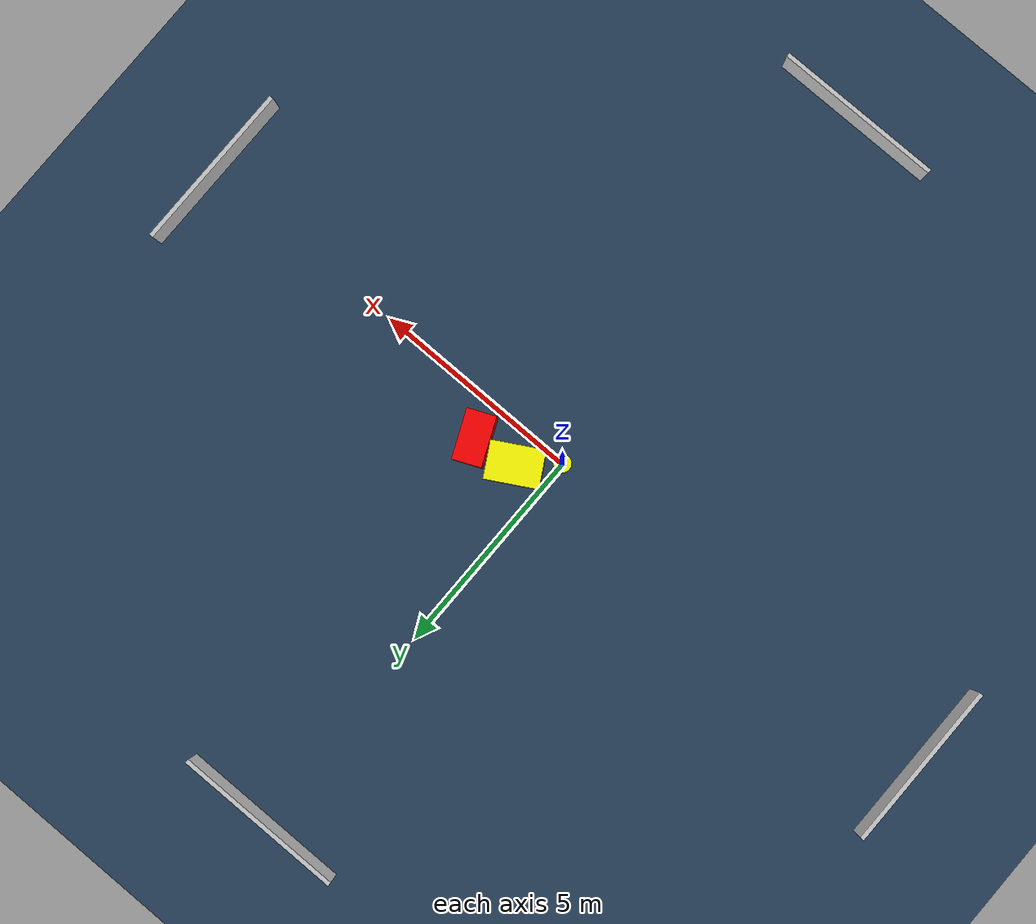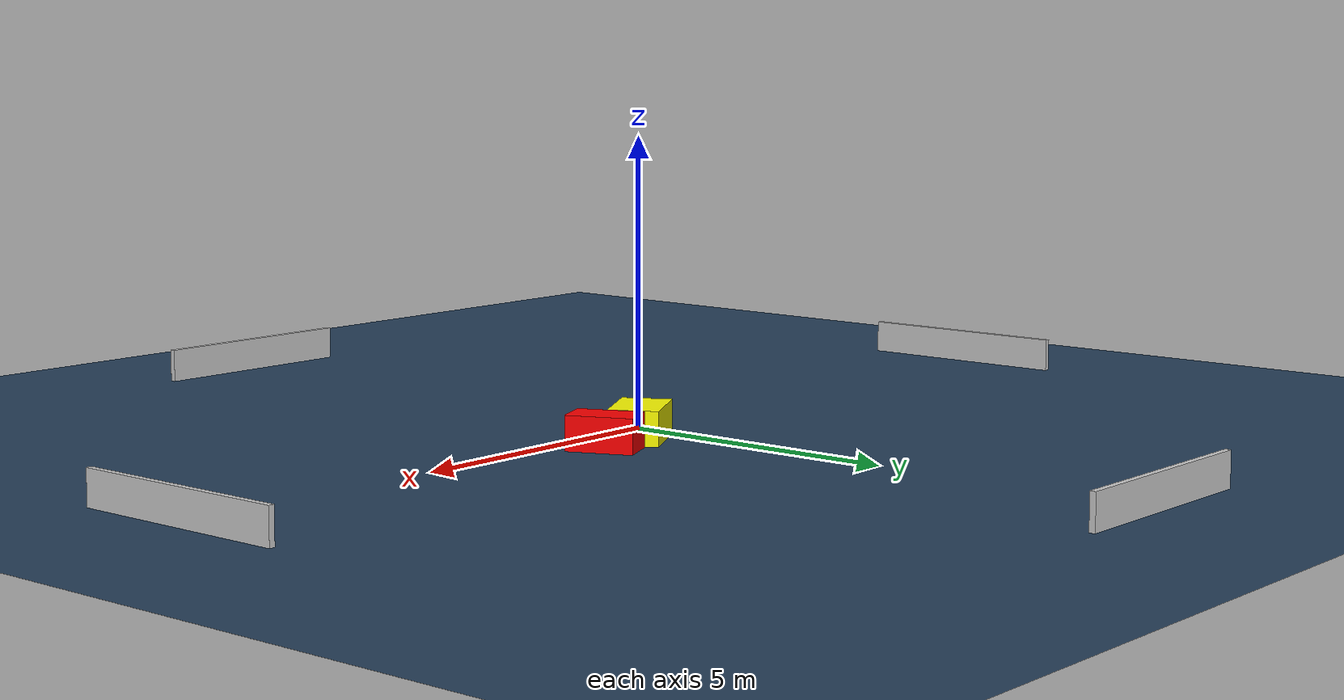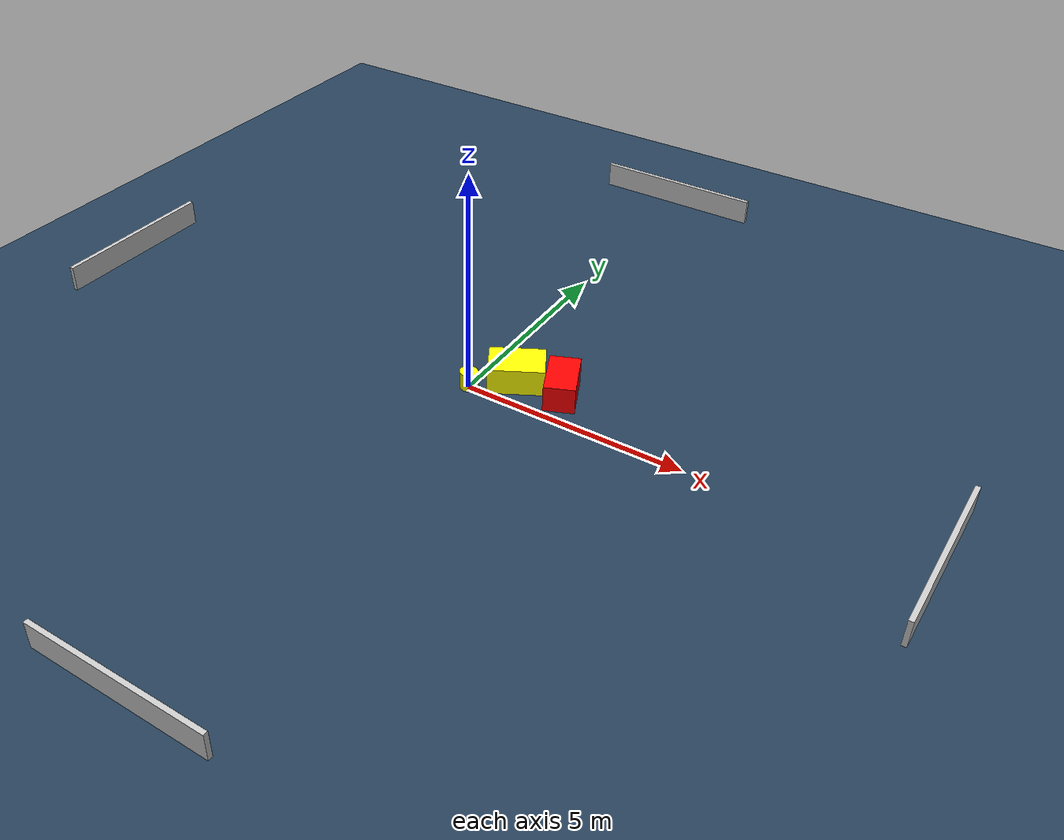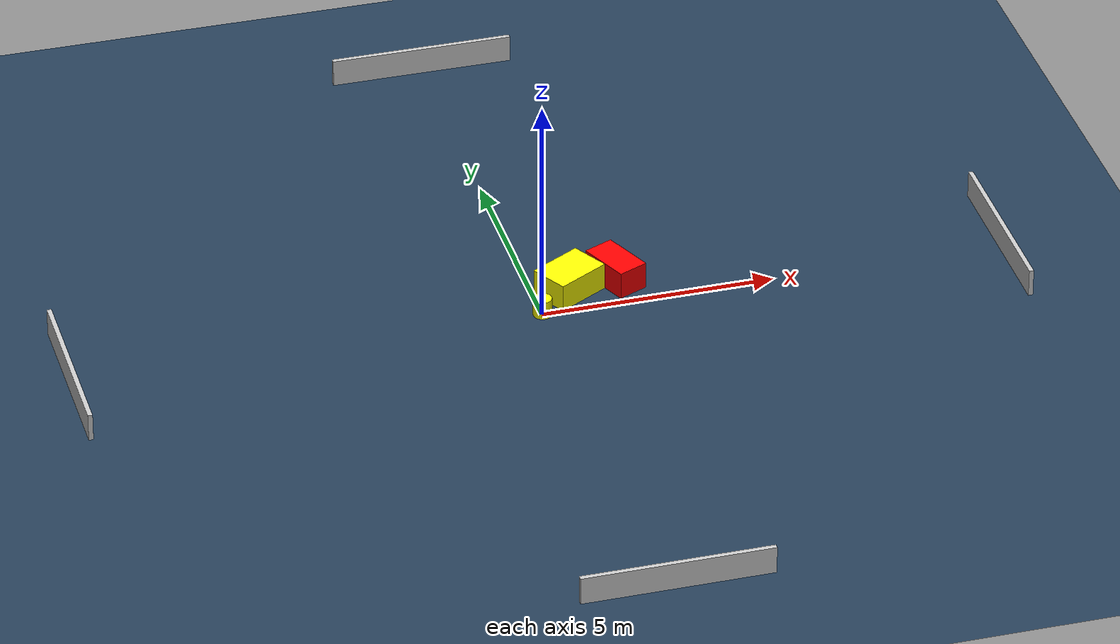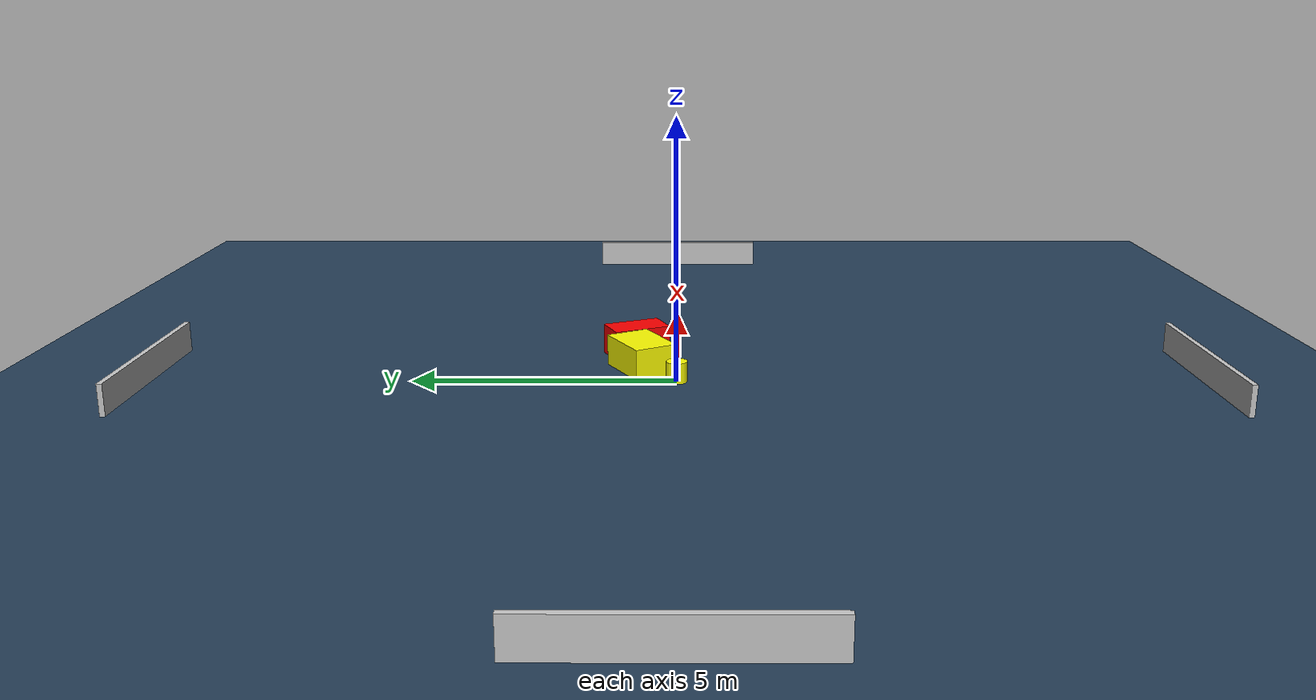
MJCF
<?xml version="1.0" ?>
<mujoco model="generated_environment">
  <option timestep="0.01" integrator="RK4" cone="elliptic"/>
  <default>
    <geom density="1"/>
  </default>
  <asset>
    <texture builtin="gradient" height="3072" name="skybox" rgb1="0.3 0.5 0.7" rgb2="0 0 0" type="skybox" width="512"/>
    <texture builtin="checker" height="300" name="groundplane" rgb1="0.2 0.3 0.4" rgb2="0.1 0.2 0.3" type="2d" width="300"/>
    <material name="groundplane" reflectance="0.2" texrepeat="5 5" texture="groundplane"/>
  </asset>
  <worldbody>
    <light dir="0 0 -1" directional="true" pos="0 0 1.5"/>
    <geom condim="3" friction="0.5 0.005 0.001" material="groundplane" name="floor" pos="0 0 0" size="0 0 0.05" type="plane"/>
    <body name="walls">
      <geom name="wall_1" condim="4" pos="-10.0 0.0 0.3" rgba="0.800000011920929 0.800000011920929 0.800000011920929 1.0" size="0.05 2.0 0.3" type="box"/>
      <geom name="wall_2" condim="4" pos="10.0 0.0 0.3" rgba="0.800000011920929 0.800000011920929 0.800000011920929 1.0" size="0.05 2.0 0.3" type="box"/>
      <geom name="wall_3" condim="4" pos="0.0 -10.0 0.3" rgba="0.800000011920929 0.800000011920929 0.800000011920929 1.0" size="2.0 0.05 0.3" type="box"/>
      <geom name="wall_4" condim="4" pos="0.0 10.0 0.3" rgba="0.800000011920929 0.800000011920929 0.800000011920929 1.0" size="2.0 0.05 0.3" type="box"/>
    </body>
    <body name="robot">
      <joint name="joint_x" type="slide" pos="0 0 0" axis="1 0 0"/>
      <joint name="joint_y" type="slide" pos="0 0 0" axis="0 1 0"/>
      <geom name="robot" type="cylinder" pos="0.0 0.0 0.2" size="0.2 0.2 0.0" mass="5.0" friction="1.0 0.005 0.0001" condim="4" rgba="1.0 1.0 0.0 1.0"/>
    </body>
    <body name="obstacle_1_movable">
      <geom name="obstacle_1_movable" condim="4" pos="0.7685767243465921 0.6858536833978779 0.3" euler="0 0 209.30484283041434" friction="0.0 0.005 0.001" rgba="1.0 1.0 0.0 1.0" size="0.6135298443792065 0.43265937177928376 0.3" type="box" mass="0.1"/>
      <joint type="free"/>
    </body>
    <body name="obstacle_2_static">
      <geom name="obstacle_2_static" condim="4" pos="1.8088500261059706 0.8104240586595596 0.3" euler="0 0 113.67279334729503" friction="0.0 0.005 0.001" rgba="1.0 0.0 0.0 1.0" size="0.5793750313345545 0.33873797865165123 0.3" type="box"/>
    </body>
  </worldbody>
  <actuator>
    <motor name="actuator_x" joint="joint_x" gear="1" ctrlrange="-1 1"/>
    <motor name="actuator_y" joint="joint_y" gear="1" ctrlrange="-1 1"/>
  </actuator>
</mujoco>
